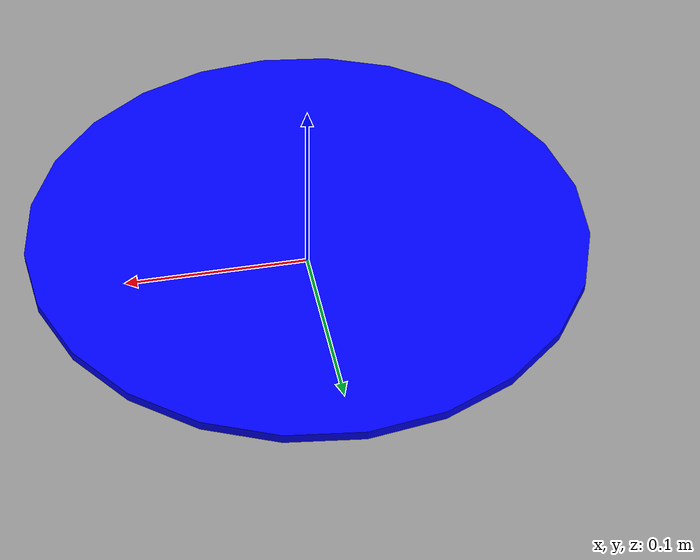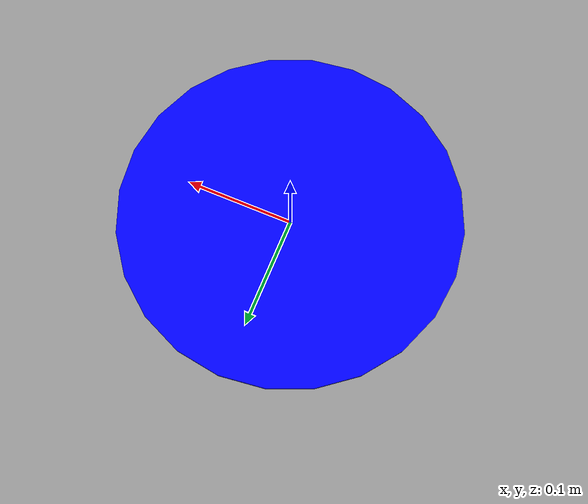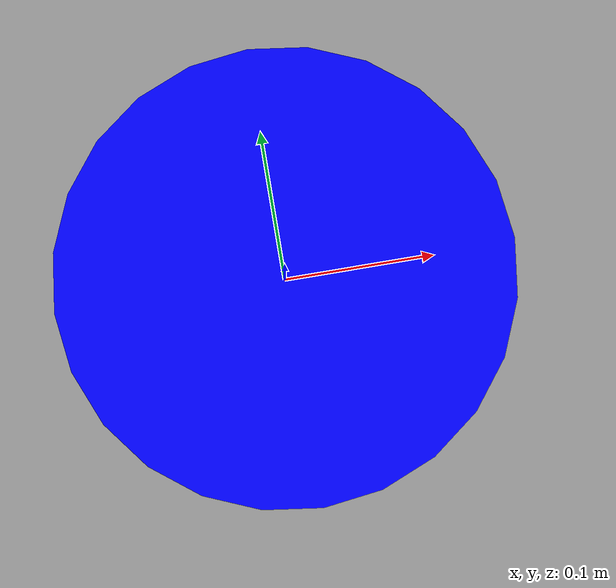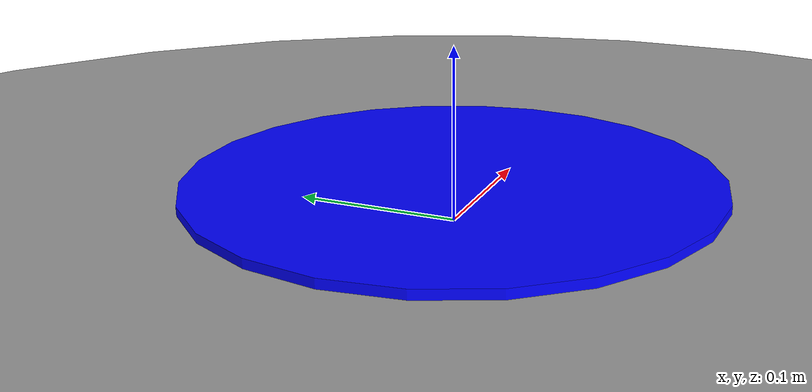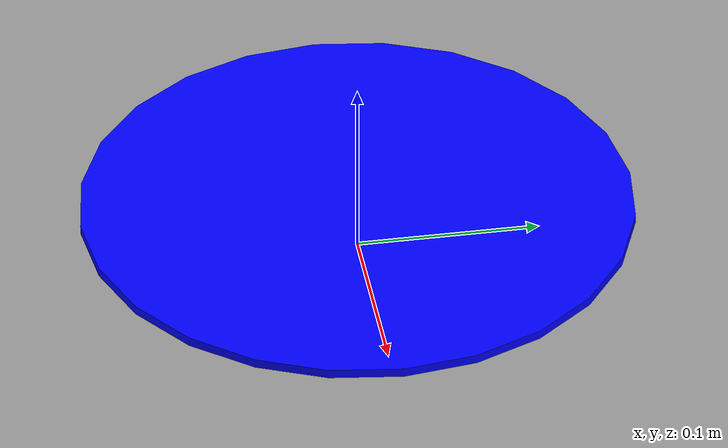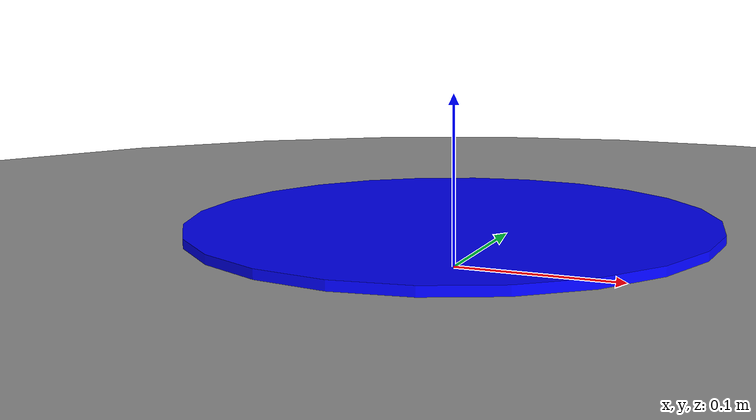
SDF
<?xml version='1.0'?>
<sdf version='1.6'>
  <model name='Plateforme'>
    <link name='link'>
      <pose frame=''>0 0 0 0 -0 0</pose>
      <inertial>
        <mass>1</mass>
        <inertia>
          <ixx>0.145833</ixx>
          <ixy>0</ixy>
          <ixz>0</ixz>
          <iyy>0.145833</iyy>
          <iyz>0</iyz>
          <izz>0.125</izz>
        </inertia>
        <pose frame=''>0 0 0 0 -0 0</pose>
      </inertial>
      <self_collide>0</self_collide>
      <kinematic>0</kinematic>
      <visual name='ModelPreview_2::link::visual_1'>
        <geometry>
          <cylinder>
            <radius>0.5</radius>
            <length>0.05</length>
          </cylinder>
        </geometry>
        <material>
          <script>
            <name>Gazebo/Grey</name>
            <uri>file://media/materials/scripts/gazebo.material</uri>
          </script>
          <ambient>0.7 0.7 0.7 1</ambient>
          <diffuse>0.7 0.7 0.7 1</diffuse>
          <specular>0.01 0.01 0.01 1</specular>
          <emissive>0 0 0 1</emissive>
          <shader type='pixel'>
            <normal_map>__default__</normal_map>
          </shader>
        </material>
        <pose frame=''>0 0 0 0 -0 0</pose>
        <cast_shadows>1</cast_shadows>
        <transparency>0</transparency>
      </visual>
      <collision name='collision'>
        <laser_retro>0</laser_retro>
        <max_contacts>10</max_contacts>
        <pose frame=''>0 0 0 0 -0 0</pose>
        <geometry>
          <cylinder>
            <radius>0.5</radius>
            <length>0.05</length>
          </cylinder>
        </geometry>
        <surface>
          <friction>
            <ode>
              <mu>1</mu>
              <mu2>1</mu2>
              <fdir1>0 0 0</fdir1>
              <slip1>0</slip1>
              <slip2>0</slip2>
            </ode>
            <torsional>
              <coefficient>1</coefficient>
              <patch_radius>0</patch_radius>
              <surface_radius>0</surface_radius>
              <use_patch_radius>1</use_patch_radius>
              <ode>
                <slip>0</slip>
              </ode>
            </torsional>
          </friction>
          <bounce>
            <restitution_coefficient>0</restitution_coefficient>
            <threshold>1e+06</threshold>
          </bounce>
          <contact>
            <collide_without_contact>0</collide_without_contact>
            <collide_without_contact_bitmask>1</collide_without_contact_bitmask>
            <collide_bitmask>1</collide_bitmask>
            <ode>
              <soft_cfm>0</soft_cfm>
              <soft_erp>0.2</soft_erp>
              <kp>1e+13</kp>
              <kd>1</kd>
              <max_vel>0.01</max_vel>
              <min_depth>0</min_depth>
            </ode>
            <bullet>
              <split_impulse>1</split_impulse>
              <split_impulse_penetration_threshold>-0.01</split_impulse_penetration_threshold>
              <soft_cfm>0</soft_cfm>
              <soft_erp>0.2</soft_erp>
              <kp>1e+13</kp>
              <kd>1</kd>
            </bullet>
          </contact>
        </surface>
      </collision>
    </link>
    <link name='link_0'>
      <pose frame=''>0 0 0.025 0 -0 0</pose>
      <inertial>
        <mass>1</mass>
        <inertia>
          <ixx>0.145833</ixx>
          <ixy>0</ixy>
          <ixz>0</ixz>
          <iyy>0.145833</iyy>
          <iyz>0</iyz>
          <izz>0.125</izz>
        </inertia>
        <pose frame=''>0 0 0 0 -0 0</pose>
      </inertial>
      <self_collide>0</self_collide>
      <kinematic>0</kinematic>
      <gravity>1</gravity>
      <visual name='visual'>
        <pose frame=''>0 0 0 0 -0 0</pose>
        <geometry>
          <cylinder>
            <radius>0.15</radius>
            <length>0.01</length>
          </cylinder>
        </geometry>
        <material>
          <lighting>1</lighting>
          <script>
            <uri>file://media/materials/scripts/gazebo.material</uri>
            <name>Gazebo/Grey</name>
          </script>
          <ambient>0 0 1 1</ambient>
          <diffuse>0 0 0 1</diffuse>
          <specular>0 0 0 1</specular>
          <emissive>0 0 0 1</emissive>
          <shader type='vertex'>
            <normal_map>__default__</normal_map>
          </shader>
        </material>
        <cast_shadows>1</cast_shadows>
        <transparency>0</transparency>
      </visual>
      <collision name='collision'>
        <laser_retro>0</laser_retro>
        <max_contacts>10</max_contacts>
        <pose frame=''>0 0 0 0 -0 0</pose>
        <geometry>
          <cylinder>
            <radius>0.15</radius>
            <length>0.01</length>
          </cylinder>
        </geometry>
        <surface>
          <friction>
            <ode>
              <mu>1</mu>
              <mu2>1</mu2>
              <fdir1>0 0 0</fdir1>
              <slip1>0</slip1>
              <slip2>0</slip2>
            </ode>
            <torsional>
              <coefficient>1</coefficient>
              <patch_radius>0</patch_radius>
              <surface_radius>0</surface_radius>
              <use_patch_radius>1</use_patch_radius>
              <ode>
                <slip>0</slip>
              </ode>
            </torsional>
          </friction>
          <bounce>
            <restitution_coefficient>0</restitution_coefficient>
            <threshold>1e+06</threshold>
          </bounce>
          <contact>
            <collide_without_contact>0</collide_without_contact>
            <collide_without_contact_bitmask>1</collide_without_contact_bitmask>
            <collide_bitmask>1</collide_bitmask>
            <ode>
              <soft_cfm>0</soft_cfm>
              <soft_erp>0.2</soft_erp>
              <kp>1e+13</kp>
              <kd>1</kd>
              <max_vel>0.01</max_vel>
              <min_depth>0</min_depth>
            </ode>
            <bullet>
              <split_impulse>1</split_impulse>
              <split_impulse_penetration_threshold>-0.01</split_impulse_penetration_threshold>
              <soft_cfm>0</soft_cfm>
              <soft_erp>0.2</soft_erp>
              <kp>1e+13</kp>
              <kd>1</kd>
            </bullet>
          </contact>
        </surface>
      </collision>
    </link>
    <static>0</static>
    <allow_auto_disable>1</allow_auto_disable>
  </model>
</sdf>
